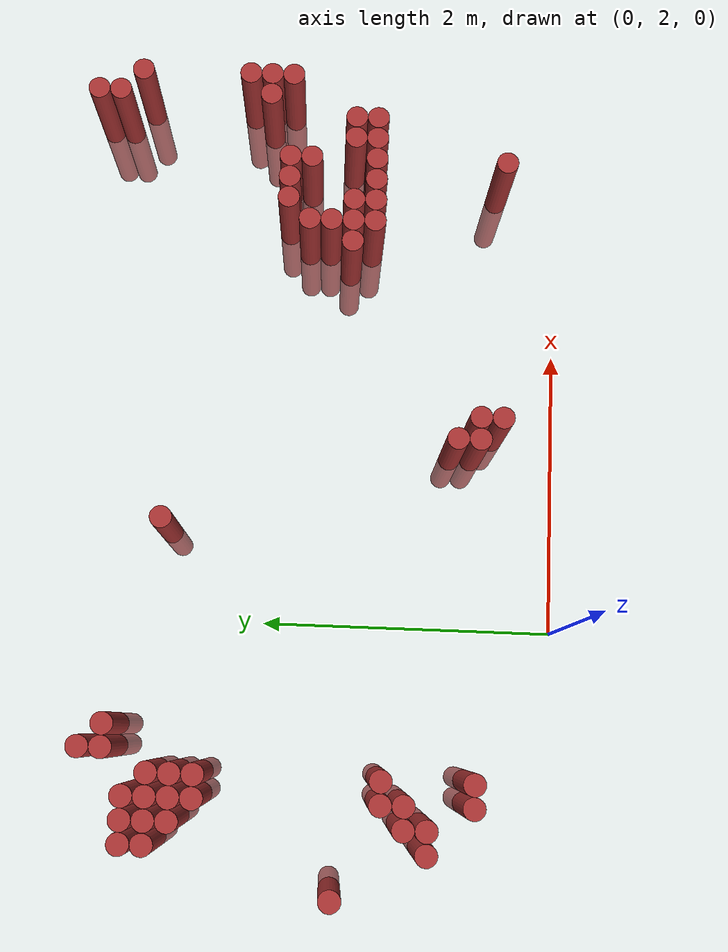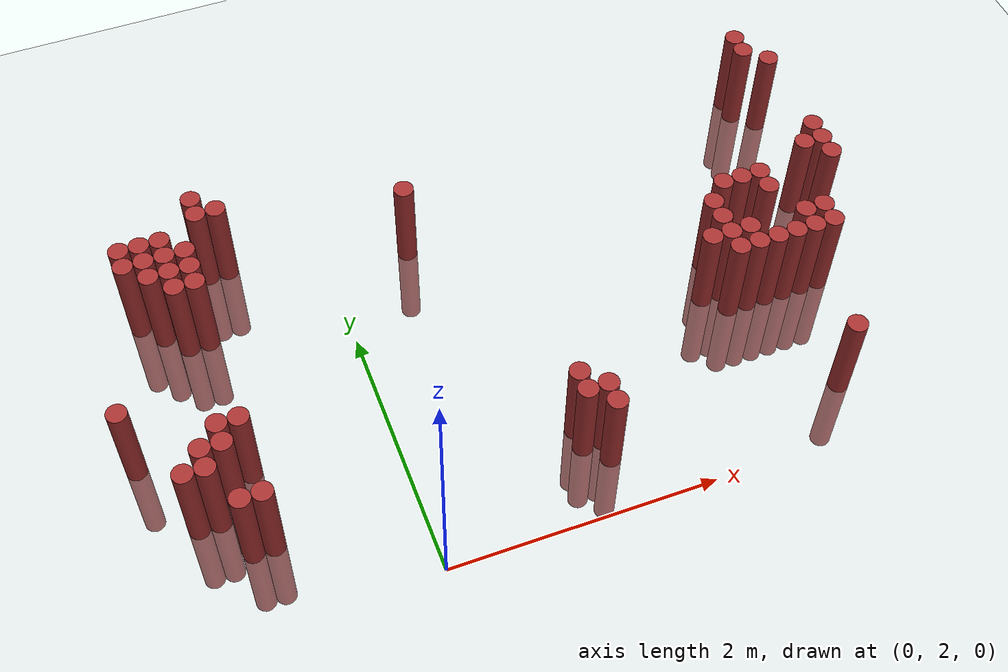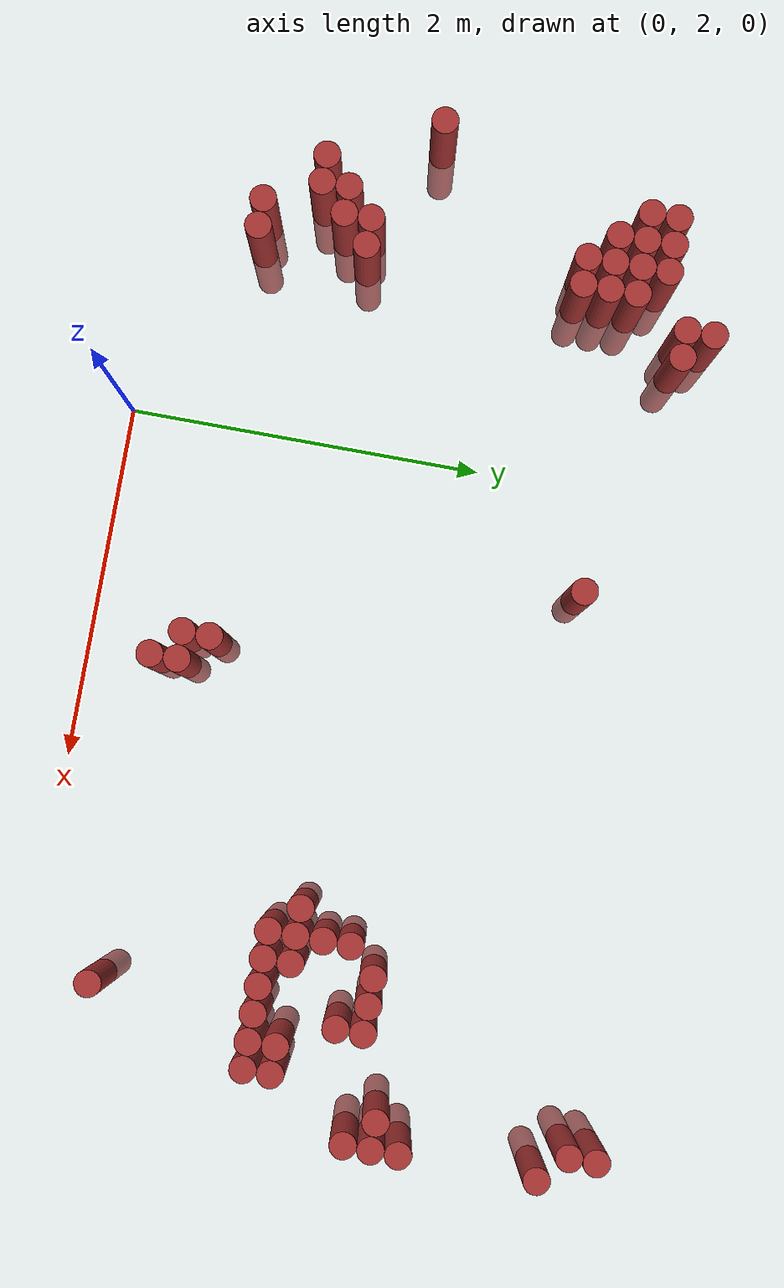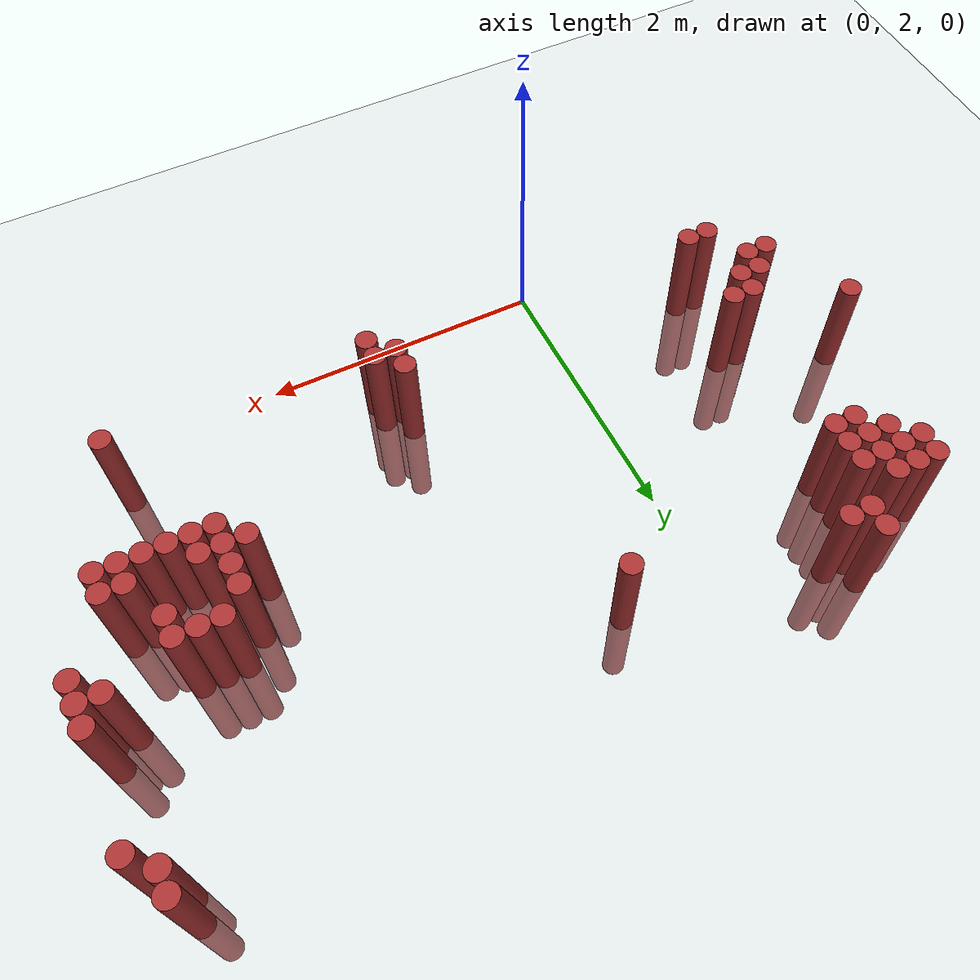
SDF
<sdf version="1.6">
 <world name="default">
  <model name="ground_plane">
   <static>1</static>
   <link name="link">
    <collision name="collision">
     <geometry><plane><normal>0 0 1</normal><size>100 100</size></plane></geometry>
     <surface><friction><ode><mu>100</mu><mu2>50</mu2></ode></friction></surface>
    </collision>
    <visual name="visual">
     <cast_shadows>0</cast_shadows>
     <geometry><plane><normal>0 0 1</normal><size>100 100</size></plane></geometry>
     <material>
      <script><uri>file://media/materials/scripts/gazebo.material</uri><name>Gazebo/Grey</name></script>
     </material>
    </visual>
   </link>
  </model>
  <model name="unit_cylinder_324">
   <static>1</static>
   <pose>-1.775000 3.475000 0.000000 0.000000 0.000000 0.000000</pose>
   <link name="link">
    <inertial>
     <mass>1</mass>
     <inertia><ixx>0.145833</ixx><ixy>0</ixy><ixz>0</ixz><iyy>0.145833</iyy><iyz>0</iyz><izz>0.125</izz></inertia>
    </inertial>
    <collision name="collision">
     <geometry><cylinder><radius>0.075000</radius><length>1.5</length></cylinder></geometry>
    </collision>
    <visual name="visual">
     <geometry><cylinder><radius>0.075000</radius><length>1.5</length></cylinder></geometry>
     <material>
      <ambient>0.648000 0.192000 0.192000 1</ambient>
      <diffuse>0.648000 0.192000 0.192000 1</diffuse>
     </material>
     <material>
      <script><name>Gazebo/Grey</name><uri>file://media/materials/scripts/gazebo.material</uri></script>
     </material>
    </visual>
   </link>
  </model>
  <model name="unit_cylinder_326">
   <static>1</static>
   <pose>-1.475000 2.875000 0.000000 0.000000 0.000000 0.000000</pose>
   <link name="link">
    <inertial>
     <mass>1</mass>
     <inertia><ixx>0.145833</ixx><ixy>0</ixy><ixz>0</ixz><iyy>0.145833</iyy><iyz>0</iyz><izz>0.125</izz></inertia>
    </inertial>
    <collision name="collision">
     <geometry><cylinder><radius>0.075000</radius><length>1.5</length></cylinder></geometry>
    </collision>
    <visual name="visual">
     <geometry><cylinder><radius>0.075000</radius><length>1.5</length></cylinder></geometry>
     <material>
      <ambient>0.648000 0.192000 0.192000 1</ambient>
      <diffuse>0.648000 0.192000 0.192000 1</diffuse>
     </material>
     <material>
      <script><name>Gazebo/Grey</name><uri>file://media/materials/scripts/gazebo.material</uri></script>
     </material>
    </visual>
   </link>
  </model>
  <model name="unit_cylinder_327">
   <static>1</static>
   <pose>-1.475000 4.675000 0.000000 0.000000 0.000000 0.000000</pose>
   <link name="link">
    <inertial>
     <mass>1</mass>
     <inertia><ixx>0.145833</ixx><ixy>0</ixy><ixz>0</ixz><iyy>0.145833</iyy><iyz>0</iyz><izz>0.125</izz></inertia>
    </inertial>
    <collision name="collision">
     <geometry><cylinder><radius>0.075000</radius><length>1.5</length></cylinder></geometry>
    </collision>
    <visual name="visual">
     <geometry><cylinder><radius>0.075000</radius><length>1.5</length></cylinder></geometry>
     <material>
      <ambient>0.648000 0.192000 0.192000 1</ambient>
      <diffuse>0.648000 0.192000 0.192000 1</diffuse>
     </material>
     <material>
      <script><name>Gazebo/Grey</name><uri>file://media/materials/scripts/gazebo.material</uri></script>
     </material>
    </visual>
   </link>
  </model>
  <model name="unit_cylinder_328">
   <static>1</static>
   <pose>-1.475000 4.825000 0.000000 0.000000 0.000000 0.000000</pose>
   <link name="link">
    <inertial>
     <mass>1</mass>
     <inertia><ixx>0.145833</ixx><ixy>0</ixy><ixz>0</ixz><iyy>0.145833</iyy><iyz>0</iyz><izz>0.125</izz></inertia>
    </inertial>
    <collision name="collision">
     <geometry><cylinder><radius>0.075000</radius><length>1.5</length></cylinder></geometry>
    </collision>
    <visual name="visual">
     <geometry><cylinder><radius>0.075000</radius><length>1.5</length></cylinder></geometry>
     <material>
      <ambient>0.648000 0.192000 0.192000 1</ambient>
      <diffuse>0.648000 0.192000 0.192000 1</diffuse>
     </material>
     <material>
      <script><name>Gazebo/Grey</name><uri>file://media/materials/scripts/gazebo.material</uri></script>
     </material>
    </visual>
   </link>
  </model>
  <model name="unit_cylinder_331">
   <static>1</static>
   <pose>-1.325000 2.875000 0.000000 0.000000 0.000000 0.000000</pose>
   <link name="link">
    <inertial>
     <mass>1</mass>
     <inertia><ixx>0.145833</ixx><ixy>0</ixy><ixz>0</ixz><iyy>0.145833</iyy><iyz>0</iyz><izz>0.125</izz></inertia>
    </inertial>
    <collision name="collision">
     <geometry><cylinder><radius>0.075000</radius><length>1.5</length></cylinder></geometry>
    </collision>
    <visual name="visual">
     <geometry><cylinder><radius>0.075000</radius><length>1.5</length></cylinder></geometry>
     <material>
      <ambient>0.648000 0.192000 0.192000 1</ambient>
      <diffuse>0.648000 0.192000 0.192000 1</diffuse>
     </material>
     <material>
      <script><name>Gazebo/Grey</name><uri>file://media/materials/scripts/gazebo.material</uri></script>
     </material>
    </visual>
   </link>
  </model>
  <model name="unit_cylinder_332">
   <static>1</static>
   <pose>-1.325000 3.025000 0.000000 0.000000 0.000000 0.000000</pose>
   <link name="link">
    <inertial>
     <mass>1</mass>
     <inertia><ixx>0.145833</ixx><ixy>0</ixy><ixz>0</ixz><iyy>0.145833</iyy><iyz>0</iyz><izz>0.125</izz></inertia>
    </inertial>
    <collision name="collision">
     <geometry><cylinder><radius>0.075000</radius><length>1.5</length></cylinder></geometry>
    </collision>
    <visual name="visual">
     <geometry><cylinder><radius>0.075000</radius><length>1.5</length></cylinder></geometry>
     <material>
      <ambient>0.648000 0.192000 0.192000 1</ambient>
      <diffuse>0.648000 0.192000 0.192000 1</diffuse>
     </material>
     <material>
      <script><name>Gazebo/Grey</name><uri>file://media/materials/scripts/gazebo.material</uri></script>
     </material>
    </visual>
   </link>
  </model>
  <model name="unit_cylinder_333">
   <static>1</static>
   <pose>-1.325000 4.525000 0.000000 0.000000 0.000000 0.000000</pose>
   <link name="link">
    <inertial>
     <mass>1</mass>
     <inertia><ixx>0.145833</ixx><ixy>0</ixy><ixz>0</ixz><iyy>0.145833</iyy><iyz>0</iyz><izz>0.125</izz></inertia>
    </inertial>
    <collision name="collision">
     <geometry><cylinder><radius>0.075000</radius><length>1.5</length></cylinder></geometry>
    </collision>
    <visual name="visual">
     <geometry><cylinder><radius>0.075000</radius><length>1.5</length></cylinder></geometry>
     <material>
      <ambient>0.648000 0.192000 0.192000 1</ambient>
      <diffuse>0.648000 0.192000 0.192000 1</diffuse>
     </material>
     <material>
      <script><name>Gazebo/Grey</name><uri>file://media/materials/scripts/gazebo.material</uri></script>
     </material>
    </visual>
   </link>
  </model>
  <model name="unit_cylinder_334">
   <static>1</static>
   <pose>-1.325000 4.675000 0.000000 0.000000 0.000000 0.000000</pose>
   <link name="link">
    <inertial>
     <mass>1</mass>
     <inertia><ixx>0.145833</ixx><ixy>0</ixy><ixz>0</ixz><iyy>0.145833</iyy><iyz>0</iyz><izz>0.125</izz></inertia>
    </inertial>
    <collision name="collision">
     <geometry><cylinder><radius>0.075000</radius><length>1.5</length></cylinder></geometry>
    </collision>
    <visual name="visual">
     <geometry><cylinder><radius>0.075000</radius><length>1.5</length></cylinder></geometry>
     <material>
      <ambient>0.648000 0.192000 0.192000 1</ambient>
      <diffuse>0.648000 0.192000 0.192000 1</diffuse>
     </material>
     <material>
      <script><name>Gazebo/Grey</name><uri>file://media/materials/scripts/gazebo.material</uri></script>
     </material>
    </visual>
   </link>
  </model>
  <model name="unit_cylinder_335">
   <static>1</static>
   <pose>-1.325000 4.825000 0.000000 0.000000 0.000000 0.000000</pose>
   <link name="link">
    <inertial>
     <mass>1</mass>
     <inertia><ixx>0.145833</ixx><ixy>0</ixy><ixz>0</ixz><iyy>0.145833</iyy><iyz>0</iyz><izz>0.125</izz></inertia>
    </inertial>
    <collision name="collision">
     <geometry><cylinder><radius>0.075000</radius><length>1.5</length></cylinder></geometry>
    </collision>
    <visual name="visual">
     <geometry><cylinder><radius>0.075000</radius><length>1.5</length></cylinder></geometry>
     <material>
      <ambient>0.648000 0.192000 0.192000 1</ambient>
      <diffuse>0.648000 0.192000 0.192000 1</diffuse>
     </material>
     <material>
      <script><name>Gazebo/Grey</name><uri>file://media/materials/scripts/gazebo.material</uri></script>
     </material>
    </visual>
   </link>
  </model>
  <model name="unit_cylinder_338">
   <static>1</static>
   <pose>-1.175000 2.575000 0.000000 0.000000 0.000000 0.000000</pose>
   <link name="link">
    <inertial>
     <mass>1</mass>
     <inertia><ixx>0.145833</ixx><ixy>0</ixy><ixz>0</ixz><iyy>0.145833</iyy><iyz>0</iyz><izz>0.125</izz></inertia>
    </inertial>
    <collision name="collision">
     <geometry><cylinder><radius>0.075000</radius><length>1.5</length></cylinder></geometry>
    </collision>
    <visual name="visual">
     <geometry><cylinder><radius>0.075000</radius><length>1.5</length></cylinder></geometry>
     <material>
      <ambient>0.648000 0.192000 0.192000 1</ambient>
      <diffuse>0.648000 0.192000 0.192000 1</diffuse>
     </material>
     <material>
      <script><name>Gazebo/Grey</name><uri>file://media/materials/scripts/gazebo.material</uri></script>
     </material>
    </visual>
   </link>
  </model>
  <model name="unit_cylinder_339">
   <static>1</static>
   <pose>-1.175000 3.025000 0.000000 0.000000 0.000000 0.000000</pose>
   <link name="link">
    <inertial>
     <mass>1</mass>
     <inertia><ixx>0.145833</ixx><ixy>0</ixy><ixz>0</ixz><iyy>0.145833</iyy><iyz>0</iyz><izz>0.125</izz></inertia>
    </inertial>
    <collision name="collision">
     <geometry><cylinder><radius>0.075000</radius><length>1.5</length></cylinder></geometry>
    </collision>
    <visual name="visual">
     <geometry><cylinder><radius>0.075000</radius><length>1.5</length></cylinder></geometry>
     <material>
      <ambient>0.648000 0.192000 0.192000 1</ambient>
      <diffuse>0.648000 0.192000 0.192000 1</diffuse>
     </material>
     <material>
      <script><name>Gazebo/Grey</name><uri>file://media/materials/scripts/gazebo.material</uri></script>
     </material>
    </visual>
   </link>
  </model>
  <model name="unit_cylinder_340">
   <static>1</static>
   <pose>-1.175000 3.175000 0.000000 0.000000 0.000000 0.000000</pose>
   <link name="link">
    <inertial>
     <mass>1</mass>
     <inertia><ixx>0.145833</ixx><ixy>0</ixy><ixz>0</ixz><iyy>0.145833</iyy><iyz>0</iyz><izz>0.125</izz></inertia>
    </inertial>
    <collision name="collision">
     <geometry><cylinder><radius>0.075000</radius><length>1.5</length></cylinder></geometry>
    </collision>
    <visual name="visual">
     <geometry><cylinder><radius>0.075000</radius><length>1.5</length></cylinder></geometry>
     <material>
      <ambient>0.648000 0.192000 0.192000 1</ambient>
      <diffuse>0.648000 0.192000 0.192000 1</diffuse>
     </material>
     <material>
      <script><name>Gazebo/Grey</name><uri>file://media/materials/scripts/gazebo.material</uri></script>
     </material>
    </visual>
   </link>
  </model>
  <model name="unit_cylinder_341">
   <static>1</static>
   <pose>-1.175000 4.375000 0.000000 0.000000 0.000000 0.000000</pose>
   <link name="link">
    <inertial>
     <mass>1</mass>
     <inertia><ixx>0.145833</ixx><ixy>0</ixy><ixz>0</ixz><iyy>0.145833</iyy><iyz>0</iyz><izz>0.125</izz></inertia>
    </inertial>
    <collision name="collision">
     <geometry><cylinder><radius>0.075000</radius><length>1.5</length></cylinder></geometry>
    </collision>
    <visual name="visual">
     <geometry><cylinder><radius>0.075000</radius><length>1.5</length></cylinder></geometry>
     <material>
      <ambient>0.648000 0.192000 0.192000 1</ambient>
      <diffuse>0.648000 0.192000 0.192000 1</diffuse>
     </material>
     <material>
      <script><name>Gazebo/Grey</name><uri>file://media/materials/scripts/gazebo.material</uri></script>
     </material>
    </visual>
   </link>
  </model>
  <model name="unit_cylinder_342">
   <static>1</static>
   <pose>-1.175000 4.525000 0.000000 0.000000 0.000000 0.000000</pose>
   <link name="link">
    <inertial>
     <mass>1</mass>
     <inertia><ixx>0.145833</ixx><ixy>0</ixy><ixz>0</ixz><iyy>0.145833</iyy><iyz>0</iyz><izz>0.125</izz></inertia>
    </inertial>
    <collision name="collision">
     <geometry><cylinder><radius>0.075000</radius><length>1.5</length></cylinder></geometry>
    </collision>
    <visual name="visual">
     <geometry><cylinder><radius>0.075000</radius><length>1.5</length></cylinder></geometry>
     <material>
      <ambient>0.648000 0.192000 0.192000 1</ambient>
      <diffuse>0.648000 0.192000 0.192000 1</diffuse>
     </material>
     <material>
      <script><name>Gazebo/Grey</name><uri>file://media/materials/scripts/gazebo.material</uri></script>
     </material>
    </visual>
   </link>
  </model>
  <model name="unit_cylinder_343">
   <static>1</static>
   <pose>-1.175000 4.675000 0.000000 0.000000 0.000000 0.000000</pose>
   <link name="link">
    <inertial>
     <mass>1</mass>
     <inertia><ixx>0.145833</ixx><ixy>0</ixy><ixz>0</ixz><iyy>0.145833</iyy><iyz>0</iyz><izz>0.125</izz></inertia>
    </inertial>
    <collision name="collision">
     <geometry><cylinder><radius>0.075000</radius><length>1.5</length></cylinder></geometry>
    </collision>
    <visual name="visual">
     <geometry><cylinder><radius>0.075000</radius><length>1.5</length></cylinder></geometry>
     <material>
      <ambient>0.648000 0.192000 0.192000 1</ambient>
      <diffuse>0.648000 0.192000 0.192000 1</diffuse>
     </material>
     <material>
      <script><name>Gazebo/Grey</name><uri>file://media/materials/scripts/gazebo.material</uri></script>
     </material>
    </visual>
   </link>
  </model>
  <model name="unit_cylinder_344">
   <static>1</static>
   <pose>-1.175000 4.825000 0.000000 0.000000 0.000000 0.000000</pose>
   <link name="link">
    <inertial>
     <mass>1</mass>
     <inertia><ixx>0.145833</ixx><ixy>0</ixy><ixz>0</ixz><iyy>0.145833</iyy><iyz>0</iyz><izz>0.125</izz></inertia>
    </inertial>
    <collision name="collision">
     <geometry><cylinder><radius>0.075000</radius><length>1.5</length></cylinder></geometry>
    </collision>
    <visual name="visual">
     <geometry><cylinder><radius>0.075000</radius><length>1.5</length></cylinder></geometry>
     <material>
      <ambient>0.648000 0.192000 0.192000 1</ambient>
      <diffuse>0.648000 0.192000 0.192000 1</diffuse>
     </material>
     <material>
      <script><name>Gazebo/Grey</name><uri>file://media/materials/scripts/gazebo.material</uri></script>
     </material>
    </visual>
   </link>
  </model>
  <model name="unit_cylinder_350">
   <static>1</static>
   <pose>-1.025000 2.575000 0.000000 0.000000 0.000000 0.000000</pose>
   <link name="link">
    <inertial>
     <mass>1</mass>
     <inertia><ixx>0.145833</ixx><ixy>0</ixy><ixz>0</ixz><iyy>0.145833</iyy><iyz>0</iyz><izz>0.125</izz></inertia>
    </inertial>
    <collision name="collision">
     <geometry><cylinder><radius>0.075000</radius><length>1.5</length></cylinder></geometry>
    </collision>
    <visual name="visual">
     <geometry><cylinder><radius>0.075000</radius><length>1.5</length></cylinder></geometry>
     <material>
      <ambient>0.648000 0.192000 0.192000 1</ambient>
      <diffuse>0.648000 0.192000 0.192000 1</diffuse>
     </material>
     <material>
      <script><name>Gazebo/Grey</name><uri>file://media/materials/scripts/gazebo.material</uri></script>
     </material>
    </visual>
   </link>
  </model>
  <model name="unit_cylinder_351">
   <static>1</static>
   <pose>-1.025000 3.175000 0.000000 0.000000 0.000000 0.000000</pose>
   <link name="link">
    <inertial>
     <mass>1</mass>
     <inertia><ixx>0.145833</ixx><ixy>0</ixy><ixz>0</ixz><iyy>0.145833</iyy><iyz>0</iyz><izz>0.125</izz></inertia>
    </inertial>
    <collision name="collision">
     <geometry><cylinder><radius>0.075000</radius><length>1.5</length></cylinder></geometry>
    </collision>
    <visual name="visual">
     <geometry><cylinder><radius>0.075000</radius><length>1.5</length></cylinder></geometry>
     <material>
      <ambient>0.648000 0.192000 0.192000 1</ambient>
      <diffuse>0.648000 0.192000 0.192000 1</diffuse>
     </material>
     <material>
      <script><name>Gazebo/Grey</name><uri>file://media/materials/scripts/gazebo.material</uri></script>
     </material>
    </visual>
   </link>
  </model>
  <model name="unit_cylinder_352">
   <static>1</static>
   <pose>-1.025000 4.375000 0.000000 0.000000 0.000000 0.000000</pose>
   <link name="link">
    <inertial>
     <mass>1</mass>
     <inertia><ixx>0.145833</ixx><ixy>0</ixy><ixz>0</ixz><iyy>0.145833</iyy><iyz>0</iyz><izz>0.125</izz></inertia>
    </inertial>
    <collision name="collision">
     <geometry><cylinder><radius>0.075000</radius><length>1.5</length></cylinder></geometry>
    </collision>
    <visual name="visual">
     <geometry><cylinder><radius>0.075000</radius><length>1.5</length></cylinder></geometry>
     <material>
      <ambient>0.648000 0.192000 0.192000 1</ambient>
      <diffuse>0.648000 0.192000 0.192000 1</diffuse>
     </material>
     <material>
      <script><name>Gazebo/Grey</name><uri>file://media/materials/scripts/gazebo.material</uri></script>
     </material>
    </visual>
   </link>
  </model>
  <model name="unit_cylinder_353">
   <static>1</static>
   <pose>-1.025000 4.525000 0.000000 0.000000 0.000000 0.000000</pose>
   <link name="link">
    <inertial>
     <mass>1</mass>
     <inertia><ixx>0.145833</ixx><ixy>0</ixy><ixz>0</ixz><iyy>0.145833</iyy><iyz>0</iyz><izz>0.125</izz></inertia>
    </inertial>
    <collision name="collision">
     <geometry><cylinder><radius>0.075000</radius><length>1.5</length></cylinder></geometry>
    </collision>
    <visual name="visual">
     <geometry><cylinder><radius>0.075000</radius><length>1.5</length></cylinder></geometry>
     <material>
      <ambient>0.648000 0.192000 0.192000 1</ambient>
      <diffuse>0.648000 0.192000 0.192000 1</diffuse>
     </material>
     <material>
      <script><name>Gazebo/Grey</name><uri>file://media/materials/scripts/gazebo.material</uri></script>
     </material>
    </visual>
   </link>
  </model>
  <model name="unit_cylinder_354">
   <static>1</static>
   <pose>-1.025000 4.675000 0.000000 0.000000 0.000000 0.000000</pose>
   <link name="link">
    <inertial>
     <mass>1</mass>
     <inertia><ixx>0.145833</ixx><ixy>0</ixy><ixz>0</ixz><iyy>0.145833</iyy><iyz>0</iyz><izz>0.125</izz></inertia>
    </inertial>
    <collision name="collision">
     <geometry><cylinder><radius>0.075000</radius><length>1.5</length></cylinder></geometry>
    </collision>
    <visual name="visual">
     <geometry><cylinder><radius>0.075000</radius><length>1.5</length></cylinder></geometry>
     <material>
      <ambient>0.648000 0.192000 0.192000 1</ambient>
      <diffuse>0.648000 0.192000 0.192000 1</diffuse>
     </material>
     <material>
      <script><name>Gazebo/Grey</name><uri>file://media/materials/scripts/gazebo.material</uri></script>
     </material>
    </visual>
   </link>
  </model>
  <model name="unit_cylinder_366">
   <static>1</static>
   <pose>-0.875000 4.975000 0.000000 0.000000 0.000000 0.000000</pose>
   <link name="link">
    <inertial>
     <mass>1</mass>
     <inertia><ixx>0.145833</ixx><ixy>0</ixy><ixz>0</ixz><iyy>0.145833</iyy><iyz>0</iyz><izz>0.125</izz></inertia>
    </inertial>
    <collision name="collision">
     <geometry><cylinder><radius>0.075000</radius><length>1.5</length></cylinder></geometry>
    </collision>
    <visual name="visual">
     <geometry><cylinder><radius>0.075000</radius><length>1.5</length></cylinder></geometry>
     <material>
      <ambient>0.648000 0.192000 0.192000 1</ambient>
      <diffuse>0.648000 0.192000 0.192000 1</diffuse>
     </material>
     <material>
      <script><name>Gazebo/Grey</name><uri>file://media/materials/scripts/gazebo.material</uri></script>
     </material>
    </visual>
   </link>
  </model>
  <model name="unit_cylinder_367">
   <static>1</static>
   <pose>-0.875000 5.125000 0.000000 0.000000 0.000000 0.000000</pose>
   <link name="link">
    <inertial>
     <mass>1</mass>
     <inertia><ixx>0.145833</ixx><ixy>0</ixy><ixz>0</ixz><iyy>0.145833</iyy><iyz>0</iyz><izz>0.125</izz></inertia>
    </inertial>
    <collision name="collision">
     <geometry><cylinder><radius>0.075000</radius><length>1.5</length></cylinder></geometry>
    </collision>
    <visual name="visual">
     <geometry><cylinder><radius>0.075000</radius><length>1.5</length></cylinder></geometry>
     <material>
      <ambient>0.648000 0.192000 0.192000 1</ambient>
      <diffuse>0.648000 0.192000 0.192000 1</diffuse>
     </material>
     <material>
      <script><name>Gazebo/Grey</name><uri>file://media/materials/scripts/gazebo.material</uri></script>
     </material>
    </visual>
   </link>
  </model>
  <model name="unit_cylinder_375">
   <static>1</static>
   <pose>-0.725000 4.975000 0.000000 0.000000 0.000000 0.000000</pose>
   <link name="link">
    <inertial>
     <mass>1</mass>
     <inertia><ixx>0.145833</ixx><ixy>0</ixy><ixz>0</ixz><iyy>0.145833</iyy><iyz>0</iyz><izz>0.125</izz></inertia>
    </inertial>
    <collision name="collision">
     <geometry><cylinder><radius>0.075000</radius><length>1.5</length></cylinder></geometry>
    </collision>
    <visual name="visual">
     <geometry><cylinder><radius>0.075000</radius><length>1.5</length></cylinder></geometry>
     <material>
      <ambient>0.648000 0.192000 0.192000 1</ambient>
      <diffuse>0.648000 0.192000 0.192000 1</diffuse>
     </material>
     <material>
      <script><name>Gazebo/Grey</name><uri>file://media/materials/scripts/gazebo.material</uri></script>
     </material>
    </visual>
   </link>
  </model>
  <model name="unit_cylinder_396">
   <static>1</static>
   <pose>0.625000 4.675000 0.000000 0.000000 0.000000 0.000000</pose>
   <link name="link">
    <inertial>
     <mass>1</mass>
     <inertia><ixx>0.145833</ixx><ixy>0</ixy><ixz>0</ixz><iyy>0.145833</iyy><iyz>0</iyz><izz>0.125</izz></inertia>
    </inertial>
    <collision name="collision">
     <geometry><cylinder><radius>0.075000</radius><length>1.5</length></cylinder></geometry>
    </collision>
    <visual name="visual">
     <geometry><cylinder><radius>0.075000</radius><length>1.5</length></cylinder></geometry>
     <material>
      <ambient>0.648000 0.192000 0.192000 1</ambient>
      <diffuse>0.648000 0.192000 0.192000 1</diffuse>
     </material>
     <material>
      <script><name>Gazebo/Grey</name><uri>file://media/materials/scripts/gazebo.material</uri></script>
     </material>
    </visual>
   </link>
  </model>
  <model name="unit_cylinder_408">
   <static>1</static>
   <pose>1.225000 2.575000 0.000000 0.000000 0.000000 0.000000</pose>
   <link name="link">
    <inertial>
     <mass>1</mass>
     <inertia><ixx>0.145833</ixx><ixy>0</ixy><ixz>0</ixz><iyy>0.145833</iyy><iyz>0</iyz><izz>0.125</izz></inertia>
    </inertial>
    <collision name="collision">
     <geometry><cylinder><radius>0.075000</radius><length>1.5</length></cylinder></geometry>
    </collision>
    <visual name="visual">
     <geometry><cylinder><radius>0.075000</radius><length>1.5</length></cylinder></geometry>
     <material>
      <ambient>0.648000 0.192000 0.192000 1</ambient>
      <diffuse>0.648000 0.192000 0.192000 1</diffuse>
     </material>
     <material>
      <script><name>Gazebo/Grey</name><uri>file://media/materials/scripts/gazebo.material</uri></script>
     </material>
    </visual>
   </link>
  </model>
  <model name="unit_cylinder_409">
   <static>1</static>
   <pose>1.225000 2.725000 0.000000 0.000000 0.000000 0.000000</pose>
   <link name="link">
    <inertial>
     <mass>1</mass>
     <inertia><ixx>0.145833</ixx><ixy>0</ixy><ixz>0</ixz><iyy>0.145833</iyy><iyz>0</iyz><izz>0.125</izz></inertia>
    </inertial>
    <collision name="collision">
     <geometry><cylinder><radius>0.075000</radius><length>1.5</length></cylinder></geometry>
    </collision>
    <visual name="visual">
     <geometry><cylinder><radius>0.075000</radius><length>1.5</length></cylinder></geometry>
     <material>
      <ambient>0.648000 0.192000 0.192000 1</ambient>
      <diffuse>0.648000 0.192000 0.192000 1</diffuse>
     </material>
     <material>
      <script><name>Gazebo/Grey</name><uri>file://media/materials/scripts/gazebo.material</uri></script>
     </material>
    </visual>
   </link>
  </model>
  <model name="unit_cylinder_416">
   <static>1</static>
   <pose>1.375000 2.425000 0.000000 0.000000 0.000000 0.000000</pose>
   <link name="link">
    <inertial>
     <mass>1</mass>
     <inertia><ixx>0.145833</ixx><ixy>0</ixy><ixz>0</ixz><iyy>0.145833</iyy><iyz>0</iyz><izz>0.125</izz></inertia>
    </inertial>
    <collision name="collision">
     <geometry><cylinder><radius>0.075000</radius><length>1.5</length></cylinder></geometry>
    </collision>
    <visual name="visual">
     <geometry><cylinder><radius>0.075000</radius><length>1.5</length></cylinder></geometry>
     <material>
      <ambient>0.648000 0.192000 0.192000 1</ambient>
      <diffuse>0.648000 0.192000 0.192000 1</diffuse>
     </material>
     <material>
      <script><name>Gazebo/Grey</name><uri>file://media/materials/scripts/gazebo.material</uri></script>
     </material>
    </visual>
   </link>
  </model>
  <model name="unit_cylinder_417">
   <static>1</static>
   <pose>1.375000 2.575000 0.000000 0.000000 0.000000 0.000000</pose>
   <link name="link">
    <inertial>
     <mass>1</mass>
     <inertia><ixx>0.145833</ixx><ixy>0</ixy><ixz>0</ixz><iyy>0.145833</iyy><iyz>0</iyz><izz>0.125</izz></inertia>
    </inertial>
    <collision name="collision">
     <geometry><cylinder><radius>0.075000</radius><length>1.5</length></cylinder></geometry>
    </collision>
    <visual name="visual">
     <geometry><cylinder><radius>0.075000</radius><length>1.5</length></cylinder></geometry>
     <material>
      <ambient>0.648000 0.192000 0.192000 1</ambient>
      <diffuse>0.648000 0.192000 0.192000 1</diffuse>
     </material>
     <material>
      <script><name>Gazebo/Grey</name><uri>file://media/materials/scripts/gazebo.material</uri></script>
     </material>
    </visual>
   </link>
  </model>
  <model name="unit_cylinder_430">
   <static>1</static>
   <pose>2.575000 3.475000 0.000000 0.000000 0.000000 0.000000</pose>
   <link name="link">
    <inertial>
     <mass>1</mass>
     <inertia><ixx>0.145833</ixx><ixy>0</ixy><ixz>0</ixz><iyy>0.145833</iyy><iyz>0</iyz><izz>0.125</izz></inertia>
    </inertial>
    <collision name="collision">
     <geometry><cylinder><radius>0.075000</radius><length>1.5</length></cylinder></geometry>
    </collision>
    <visual name="visual">
     <geometry><cylinder><radius>0.075000</radius><length>1.5</length></cylinder></geometry>
     <material>
      <ambient>0.648000 0.192000 0.192000 1</ambient>
      <diffuse>0.648000 0.192000 0.192000 1</diffuse>
     </material>
     <material>
      <script><name>Gazebo/Grey</name><uri>file://media/materials/scripts/gazebo.material</uri></script>
     </material>
    </visual>
   </link>
  </model>
  <model name="unit_cylinder_435">
   <static>1</static>
   <pose>2.725000 3.325000 0.000000 0.000000 0.000000 0.000000</pose>
   <link name="link">
    <inertial>
     <mass>1</mass>
     <inertia><ixx>0.145833</ixx><ixy>0</ixy><ixz>0</ixz><iyy>0.145833</iyy><iyz>0</iyz><izz>0.125</izz></inertia>
    </inertial>
    <collision name="collision">
     <geometry><cylinder><radius>0.075000</radius><length>1.5</length></cylinder></geometry>
    </collision>
    <visual name="visual">
     <geometry><cylinder><radius>0.075000</radius><length>1.5</length></cylinder></geometry>
     <material>
      <ambient>0.648000 0.192000 0.192000 1</ambient>
      <diffuse>0.648000 0.192000 0.192000 1</diffuse>
     </material>
     <material>
      <script><name>Gazebo/Grey</name><uri>file://media/materials/scripts/gazebo.material</uri></script>
     </material>
    </visual>
   </link>
  </model>
  <model name="unit_cylinder_436">
   <static>1</static>
   <pose>2.725000 3.475000 0.000000 0.000000 0.000000 0.000000</pose>
   <link name="link">
    <inertial>
     <mass>1</mass>
     <inertia><ixx>0.145833</ixx><ixy>0</ixy><ixz>0</ixz><iyy>0.145833</iyy><iyz>0</iyz><izz>0.125</izz></inertia>
    </inertial>
    <collision name="collision">
     <geometry><cylinder><radius>0.075000</radius><length>1.5</length></cylinder></geometry>
    </collision>
    <visual name="visual">
     <geometry><cylinder><radius>0.075000</radius><length>1.5</length></cylinder></geometry>
     <material>
      <ambient>0.648000 0.192000 0.192000 1</ambient>
      <diffuse>0.648000 0.192000 0.192000 1</diffuse>
     </material>
     <material>
      <script><name>Gazebo/Grey</name><uri>file://media/materials/scripts/gazebo.material</uri></script>
     </material>
    </visual>
   </link>
  </model>
  <model name="unit_cylinder_437">
   <static>1</static>
   <pose>2.725000 3.625000 0.000000 0.000000 0.000000 0.000000</pose>
   <link name="link">
    <inertial>
     <mass>1</mass>
     <inertia><ixx>0.145833</ixx><ixy>0</ixy><ixz>0</ixz><iyy>0.145833</iyy><iyz>0</iyz><izz>0.125</izz></inertia>
    </inertial>
    <collision name="collision">
     <geometry><cylinder><radius>0.075000</radius><length>1.5</length></cylinder></geometry>
    </collision>
    <visual name="visual">
     <geometry><cylinder><radius>0.075000</radius><length>1.5</length></cylinder></geometry>
     <material>
      <ambient>0.648000 0.192000 0.192000 1</ambient>
      <diffuse>0.648000 0.192000 0.192000 1</diffuse>
     </material>
     <material>
      <script><name>Gazebo/Grey</name><uri>file://media/materials/scripts/gazebo.material</uri></script>
     </material>
    </visual>
   </link>
  </model>
  <model name="unit_cylinder_438">
   <static>1</static>
   <pose>2.725000 3.775000 0.000000 0.000000 0.000000 0.000000</pose>
   <link name="link">
    <inertial>
     <mass>1</mass>
     <inertia><ixx>0.145833</ixx><ixy>0</ixy><ixz>0</ixz><iyy>0.145833</iyy><iyz>0</iyz><izz>0.125</izz></inertia>
    </inertial>
    <collision name="collision">
     <geometry><cylinder><radius>0.075000</radius><length>1.5</length></cylinder></geometry>
    </collision>
    <visual name="visual">
     <geometry><cylinder><radius>0.075000</radius><length>1.5</length></cylinder></geometry>
     <material>
      <ambient>0.648000 0.192000 0.192000 1</ambient>
      <diffuse>0.648000 0.192000 0.192000 1</diffuse>
     </material>
     <material>
      <script><name>Gazebo/Grey</name><uri>file://media/materials/scripts/gazebo.material</uri></script>
     </material>
    </visual>
   </link>
  </model>
  <model name="unit_cylinder_441">
   <static>1</static>
   <pose>2.875000 3.325000 0.000000 0.000000 0.000000 0.000000</pose>
   <link name="link">
    <inertial>
     <mass>1</mass>
     <inertia><ixx>0.145833</ixx><ixy>0</ixy><ixz>0</ixz><iyy>0.145833</iyy><iyz>0</iyz><izz>0.125</izz></inertia>
    </inertial>
    <collision name="collision">
     <geometry><cylinder><radius>0.075000</radius><length>1.5</length></cylinder></geometry>
    </collision>
    <visual name="visual">
     <geometry><cylinder><radius>0.075000</radius><length>1.5</length></cylinder></geometry>
     <material>
      <ambient>0.648000 0.192000 0.192000 1</ambient>
      <diffuse>0.648000 0.192000 0.192000 1</diffuse>
     </material>
     <material>
      <script><name>Gazebo/Grey</name><uri>file://media/materials/scripts/gazebo.material</uri></script>
     </material>
    </visual>
   </link>
  </model>
  <model name="unit_cylinder_442">
   <static>1</static>
   <pose>2.875000 3.475000 0.000000 0.000000 0.000000 0.000000</pose>
   <link name="link">
    <inertial>
     <mass>1</mass>
     <inertia><ixx>0.145833</ixx><ixy>0</ixy><ixz>0</ixz><iyy>0.145833</iyy><iyz>0</iyz><izz>0.125</izz></inertia>
    </inertial>
    <collision name="collision">
     <geometry><cylinder><radius>0.075000</radius><length>1.5</length></cylinder></geometry>
    </collision>
    <visual name="visual">
     <geometry><cylinder><radius>0.075000</radius><length>1.5</length></cylinder></geometry>
     <material>
      <ambient>0.648000 0.192000 0.192000 1</ambient>
      <diffuse>0.648000 0.192000 0.192000 1</diffuse>
     </material>
     <material>
      <script><name>Gazebo/Grey</name><uri>file://media/materials/scripts/gazebo.material</uri></script>
     </material>
    </visual>
   </link>
  </model>
  <model name="unit_cylinder_443">
   <static>1</static>
   <pose>2.875000 3.925000 0.000000 0.000000 0.000000 0.000000</pose>
   <link name="link">
    <inertial>
     <mass>1</mass>
     <inertia><ixx>0.145833</ixx><ixy>0</ixy><ixz>0</ixz><iyy>0.145833</iyy><iyz>0</iyz><izz>0.125</izz></inertia>
    </inertial>
    <collision name="collision">
     <geometry><cylinder><radius>0.075000</radius><length>1.5</length></cylinder></geometry>
    </collision>
    <visual name="visual">
     <geometry><cylinder><radius>0.075000</radius><length>1.5</length></cylinder></geometry>
     <material>
      <ambient>0.648000 0.192000 0.192000 1</ambient>
      <diffuse>0.648000 0.192000 0.192000 1</diffuse>
     </material>
     <material>
      <script><name>Gazebo/Grey</name><uri>file://media/materials/scripts/gazebo.material</uri></script>
     </material>
    </visual>
   </link>
  </model>
  <model name="unit_cylinder_447">
   <static>1</static>
   <pose>3.025000 3.325000 0.000000 0.000000 0.000000 0.000000</pose>
   <link name="link">
    <inertial>
     <mass>1</mass>
     <inertia><ixx>0.145833</ixx><ixy>0</ixy><ixz>0</ixz><iyy>0.145833</iyy><iyz>0</iyz><izz>0.125</izz></inertia>
    </inertial>
    <collision name="collision">
     <geometry><cylinder><radius>0.075000</radius><length>1.5</length></cylinder></geometry>
    </collision>
    <visual name="visual">
     <geometry><cylinder><radius>0.075000</radius><length>1.5</length></cylinder></geometry>
     <material>
      <ambient>0.648000 0.192000 0.192000 1</ambient>
      <diffuse>0.648000 0.192000 0.192000 1</diffuse>
     </material>
     <material>
      <script><name>Gazebo/Grey</name><uri>file://media/materials/scripts/gazebo.material</uri></script>
     </material>
    </visual>
   </link>
  </model>
  <model name="unit_cylinder_448">
   <static>1</static>
   <pose>3.025000 3.925000 0.000000 0.000000 0.000000 0.000000</pose>
   <link name="link">
    <inertial>
     <mass>1</mass>
     <inertia><ixx>0.145833</ixx><ixy>0</ixy><ixz>0</ixz><iyy>0.145833</iyy><iyz>0</iyz><izz>0.125</izz></inertia>
    </inertial>
    <collision name="collision">
     <geometry><cylinder><radius>0.075000</radius><length>1.5</length></cylinder></geometry>
    </collision>
    <visual name="visual">
     <geometry><cylinder><radius>0.075000</radius><length>1.5</length></cylinder></geometry>
     <material>
      <ambient>0.648000 0.192000 0.192000 1</ambient>
      <diffuse>0.648000 0.192000 0.192000 1</diffuse>
     </material>
     <material>
      <script><name>Gazebo/Grey</name><uri>file://media/materials/scripts/gazebo.material</uri></script>
     </material>
    </visual>
   </link>
  </model>
  <model name="unit_cylinder_451">
   <static>1</static>
   <pose>3.175000 2.425000 0.000000 0.000000 0.000000 0.000000</pose>
   <link name="link">
    <inertial>
     <mass>1</mass>
     <inertia><ixx>0.145833</ixx><ixy>0</ixy><ixz>0</ixz><iyy>0.145833</iyy><iyz>0</iyz><izz>0.125</izz></inertia>
    </inertial>
    <collision name="collision">
     <geometry><cylinder><radius>0.075000</radius><length>1.5</length></cylinder></geometry>
    </collision>
    <visual name="visual">
     <geometry><cylinder><radius>0.075000</radius><length>1.5</length></cylinder></geometry>
     <material>
      <ambient>0.648000 0.192000 0.192000 1</ambient>
      <diffuse>0.648000 0.192000 0.192000 1</diffuse>
     </material>
     <material>
      <script><name>Gazebo/Grey</name><uri>file://media/materials/scripts/gazebo.material</uri></script>
     </material>
    </visual>
   </link>
  </model>
  <model name="unit_cylinder_452">
   <static>1</static>
   <pose>3.175000 3.325000 0.000000 0.000000 0.000000 0.000000</pose>
   <link name="link">
    <inertial>
     <mass>1</mass>
     <inertia><ixx>0.145833</ixx><ixy>0</ixy><ixz>0</ixz><iyy>0.145833</iyy><iyz>0</iyz><izz>0.125</izz></inertia>
    </inertial>
    <collision name="collision">
     <geometry><cylinder><radius>0.075000</radius><length>1.5</length></cylinder></geometry>
    </collision>
    <visual name="visual">
     <geometry><cylinder><radius>0.075000</radius><length>1.5</length></cylinder></geometry>
     <material>
      <ambient>0.648000 0.192000 0.192000 1</ambient>
      <diffuse>0.648000 0.192000 0.192000 1</diffuse>
     </material>
     <material>
      <script><name>Gazebo/Grey</name><uri>file://media/materials/scripts/gazebo.material</uri></script>
     </material>
    </visual>
   </link>
  </model>
  <model name="unit_cylinder_453">
   <static>1</static>
   <pose>3.175000 3.775000 0.000000 0.000000 0.000000 0.000000</pose>
   <link name="link">
    <inertial>
     <mass>1</mass>
     <inertia><ixx>0.145833</ixx><ixy>0</ixy><ixz>0</ixz><iyy>0.145833</iyy><iyz>0</iyz><izz>0.125</izz></inertia>
    </inertial>
    <collision name="collision">
     <geometry><cylinder><radius>0.075000</radius><length>1.5</length></cylinder></geometry>
    </collision>
    <visual name="visual">
     <geometry><cylinder><radius>0.075000</radius><length>1.5</length></cylinder></geometry>
     <material>
      <ambient>0.648000 0.192000 0.192000 1</ambient>
      <diffuse>0.648000 0.192000 0.192000 1</diffuse>
     </material>
     <material>
      <script><name>Gazebo/Grey</name><uri>file://media/materials/scripts/gazebo.material</uri></script>
     </material>
    </visual>
   </link>
  </model>
  <model name="unit_cylinder_454">
   <static>1</static>
   <pose>3.175000 3.925000 0.000000 0.000000 0.000000 0.000000</pose>
   <link name="link">
    <inertial>
     <mass>1</mass>
     <inertia><ixx>0.145833</ixx><ixy>0</ixy><ixz>0</ixz><iyy>0.145833</iyy><iyz>0</iyz><izz>0.125</izz></inertia>
    </inertial>
    <collision name="collision">
     <geometry><cylinder><radius>0.075000</radius><length>1.5</length></cylinder></geometry>
    </collision>
    <visual name="visual">
     <geometry><cylinder><radius>0.075000</radius><length>1.5</length></cylinder></geometry>
     <material>
      <ambient>0.648000 0.192000 0.192000 1</ambient>
      <diffuse>0.648000 0.192000 0.192000 1</diffuse>
     </material>
     <material>
      <script><name>Gazebo/Grey</name><uri>file://media/materials/scripts/gazebo.material</uri></script>
     </material>
    </visual>
   </link>
  </model>
  <model name="unit_cylinder_455">
   <static>1</static>
   <pose>3.325000 3.325000 0.000000 0.000000 0.000000 0.000000</pose>
   <link name="link">
    <inertial>
     <mass>1</mass>
     <inertia><ixx>0.145833</ixx><ixy>0</ixy><ixz>0</ixz><iyy>0.145833</iyy><iyz>0</iyz><izz>0.125</izz></inertia>
    </inertial>
    <collision name="collision">
     <geometry><cylinder><radius>0.075000</radius><length>1.5</length></cylinder></geometry>
    </collision>
    <visual name="visual">
     <geometry><cylinder><radius>0.075000</radius><length>1.5</length></cylinder></geometry>
     <material>
      <ambient>0.648000 0.192000 0.192000 1</ambient>
      <diffuse>0.648000 0.192000 0.192000 1</diffuse>
     </material>
     <material>
      <script><name>Gazebo/Grey</name><uri>file://media/materials/scripts/gazebo.material</uri></script>
     </material>
    </visual>
   </link>
  </model>
  <model name="unit_cylinder_456">
   <static>1</static>
   <pose>3.325000 3.475000 0.000000 0.000000 0.000000 0.000000</pose>
   <link name="link">
    <inertial>
     <mass>1</mass>
     <inertia><ixx>0.145833</ixx><ixy>0</ixy><ixz>0</ixz><iyy>0.145833</iyy><iyz>0</iyz><izz>0.125</izz></inertia>
    </inertial>
    <collision name="collision">
     <geometry><cylinder><radius>0.075000</radius><length>1.5</length></cylinder></geometry>
    </collision>
    <visual name="visual">
     <geometry><cylinder><radius>0.075000</radius><length>1.5</length></cylinder></geometry>
     <material>
      <ambient>0.648000 0.192000 0.192000 1</ambient>
      <diffuse>0.648000 0.192000 0.192000 1</diffuse>
     </material>
     <material>
      <script><name>Gazebo/Grey</name><uri>file://media/materials/scripts/gazebo.material</uri></script>
     </material>
    </visual>
   </link>
  </model>
  <model name="unit_cylinder_459">
   <static>1</static>
   <pose>3.475000 3.325000 0.000000 0.000000 0.000000 0.000000</pose>
   <link name="link">
    <inertial>
     <mass>1</mass>
     <inertia><ixx>0.145833</ixx><ixy>0</ixy><ixz>0</ixz><iyy>0.145833</iyy><iyz>0</iyz><izz>0.125</izz></inertia>
    </inertial>
    <collision name="collision">
     <geometry><cylinder><radius>0.075000</radius><length>1.5</length></cylinder></geometry>
    </collision>
    <visual name="visual">
     <geometry><cylinder><radius>0.075000</radius><length>1.5</length></cylinder></geometry>
     <material>
      <ambient>0.648000 0.192000 0.192000 1</ambient>
      <diffuse>0.648000 0.192000 0.192000 1</diffuse>
     </material>
     <material>
      <script><name>Gazebo/Grey</name><uri>file://media/materials/scripts/gazebo.material</uri></script>
     </material>
    </visual>
   </link>
  </model>
  <model name="unit_cylinder_460">
   <static>1</static>
   <pose>3.475000 3.475000 0.000000 0.000000 0.000000 0.000000</pose>
   <link name="link">
    <inertial>
     <mass>1</mass>
     <inertia><ixx>0.145833</ixx><ixy>0</ixy><ixz>0</ixz><iyy>0.145833</iyy><iyz>0</iyz><izz>0.125</izz></inertia>
    </inertial>
    <collision name="collision">
     <geometry><cylinder><radius>0.075000</radius><length>1.5</length></cylinder></geometry>
    </collision>
    <visual name="visual">
     <geometry><cylinder><radius>0.075000</radius><length>1.5</length></cylinder></geometry>
     <material>
      <ambient>0.648000 0.192000 0.192000 1</ambient>
      <diffuse>0.648000 0.192000 0.192000 1</diffuse>
     </material>
     <material>
      <script><name>Gazebo/Grey</name><uri>file://media/materials/scripts/gazebo.material</uri></script>
     </material>
    </visual>
   </link>
  </model>
  <model name="unit_cylinder_465">
   <static>1</static>
   <pose>3.625000 4.075000 0.000000 0.000000 0.000000 0.000000</pose>
   <link name="link">
    <inertial>
     <mass>1</mass>
     <inertia><ixx>0.145833</ixx><ixy>0</ixy><ixz>0</ixz><iyy>0.145833</iyy><iyz>0</iyz><izz>0.125</izz></inertia>
    </inertial>
    <collision name="collision">
     <geometry><cylinder><radius>0.075000</radius><length>1.5</length></cylinder></geometry>
    </collision>
    <visual name="visual">
     <geometry><cylinder><radius>0.075000</radius><length>1.5</length></cylinder></geometry>
     <material>
      <ambient>0.648000 0.192000 0.192000 1</ambient>
      <diffuse>0.648000 0.192000 0.192000 1</diffuse>
     </material>
     <material>
      <script><name>Gazebo/Grey</name><uri>file://media/materials/scripts/gazebo.material</uri></script>
     </material>
    </visual>
   </link>
  </model>
  <model name="unit_cylinder_466">
   <static>1</static>
   <pose>3.625000 5.125000 0.000000 0.000000 0.000000 0.000000</pose>
   <link name="link">
    <inertial>
     <mass>1</mass>
     <inertia><ixx>0.145833</ixx><ixy>0</ixy><ixz>0</ixz><iyy>0.145833</iyy><iyz>0</iyz><izz>0.125</izz></inertia>
    </inertial>
    <collision name="collision">
     <geometry><cylinder><radius>0.075000</radius><length>1.5</length></cylinder></geometry>
    </collision>
    <visual name="visual">
     <geometry><cylinder><radius>0.075000</radius><length>1.5</length></cylinder></geometry>
     <material>
      <ambient>0.648000 0.192000 0.192000 1</ambient>
      <diffuse>0.648000 0.192000 0.192000 1</diffuse>
     </material>
     <material>
      <script><name>Gazebo/Grey</name><uri>file://media/materials/scripts/gazebo.material</uri></script>
     </material>
    </visual>
   </link>
  </model>
  <model name="unit_cylinder_467">
   <static>1</static>
   <pose>3.625000 5.275000 0.000000 0.000000 0.000000 0.000000</pose>
   <link name="link">
    <inertial>
     <mass>1</mass>
     <inertia><ixx>0.145833</ixx><ixy>0</ixy><ixz>0</ixz><iyy>0.145833</iyy><iyz>0</iyz><izz>0.125</izz></inertia>
    </inertial>
    <collision name="collision">
     <geometry><cylinder><radius>0.075000</radius><length>1.5</length></cylinder></geometry>
    </collision>
    <visual name="visual">
     <geometry><cylinder><radius>0.075000</radius><length>1.5</length></cylinder></geometry>
     <material>
      <ambient>0.648000 0.192000 0.192000 1</ambient>
      <diffuse>0.648000 0.192000 0.192000 1</diffuse>
     </material>
     <material>
      <script><name>Gazebo/Grey</name><uri>file://media/materials/scripts/gazebo.material</uri></script>
     </material>
    </visual>
   </link>
  </model>
  <model name="unit_cylinder_481">
   <static>1</static>
   <pose>3.775000 3.925000 0.000000 0.000000 0.000000 0.000000</pose>
   <link name="link">
    <inertial>
     <mass>1</mass>
     <inertia><ixx>0.145833</ixx><ixy>0</ixy><ixz>0</ixz><iyy>0.145833</iyy><iyz>0</iyz><izz>0.125</izz></inertia>
    </inertial>
    <collision name="collision">
     <geometry><cylinder><radius>0.075000</radius><length>1.5</length></cylinder></geometry>
    </collision>
    <visual name="visual">
     <geometry><cylinder><radius>0.075000</radius><length>1.5</length></cylinder></geometry>
     <material>
      <ambient>0.648000 0.192000 0.192000 1</ambient>
      <diffuse>0.648000 0.192000 0.192000 1</diffuse>
     </material>
     <material>
      <script><name>Gazebo/Grey</name><uri>file://media/materials/scripts/gazebo.material</uri></script>
     </material>
    </visual>
   </link>
  </model>
  <model name="unit_cylinder_482">
   <static>1</static>
   <pose>3.775000 4.075000 0.000000 0.000000 0.000000 0.000000</pose>
   <link name="link">
    <inertial>
     <mass>1</mass>
     <inertia><ixx>0.145833</ixx><ixy>0</ixy><ixz>0</ixz><iyy>0.145833</iyy><iyz>0</iyz><izz>0.125</izz></inertia>
    </inertial>
    <collision name="collision">
     <geometry><cylinder><radius>0.075000</radius><length>1.5</length></cylinder></geometry>
    </collision>
    <visual name="visual">
     <geometry><cylinder><radius>0.075000</radius><length>1.5</length></cylinder></geometry>
     <material>
      <ambient>0.648000 0.192000 0.192000 1</ambient>
      <diffuse>0.648000 0.192000 0.192000 1</diffuse>
     </material>
     <material>
      <script><name>Gazebo/Grey</name><uri>file://media/materials/scripts/gazebo.material</uri></script>
     </material>
    </visual>
   </link>
  </model>
  <model name="unit_cylinder_483">
   <static>1</static>
   <pose>3.775000 4.225000 0.000000 0.000000 0.000000 0.000000</pose>
   <link name="link">
    <inertial>
     <mass>1</mass>
     <inertia><ixx>0.145833</ixx><ixy>0</ixy><ixz>0</ixz><iyy>0.145833</iyy><iyz>0</iyz><izz>0.125</izz></inertia>
    </inertial>
    <collision name="collision">
     <geometry><cylinder><radius>0.075000</radius><length>1.5</length></cylinder></geometry>
    </collision>
    <visual name="visual">
     <geometry><cylinder><radius>0.075000</radius><length>1.5</length></cylinder></geometry>
     <material>
      <ambient>0.648000 0.192000 0.192000 1</ambient>
      <diffuse>0.648000 0.192000 0.192000 1</diffuse>
     </material>
     <material>
      <script><name>Gazebo/Grey</name><uri>file://media/materials/scripts/gazebo.material</uri></script>
     </material>
    </visual>
   </link>
  </model>
  <model name="unit_cylinder_484">
   <static>1</static>
   <pose>3.775000 4.975000 0.000000 0.000000 0.000000 0.000000</pose>
   <link name="link">
    <inertial>
     <mass>1</mass>
     <inertia><ixx>0.145833</ixx><ixy>0</ixy><ixz>0</ixz><iyy>0.145833</iyy><iyz>0</iyz><izz>0.125</izz></inertia>
    </inertial>
    <collision name="collision">
     <geometry><cylinder><radius>0.075000</radius><length>1.5</length></cylinder></geometry>
    </collision>
    <visual name="visual">
     <geometry><cylinder><radius>0.075000</radius><length>1.5</length></cylinder></geometry>
     <material>
      <ambient>0.648000 0.192000 0.192000 1</ambient>
      <diffuse>0.648000 0.192000 0.192000 1</diffuse>
     </material>
     <material>
      <script><name>Gazebo/Grey</name><uri>file://media/materials/scripts/gazebo.material</uri></script>
     </material>
    </visual>
   </link>
  </model>
 </world>
</sdf>
